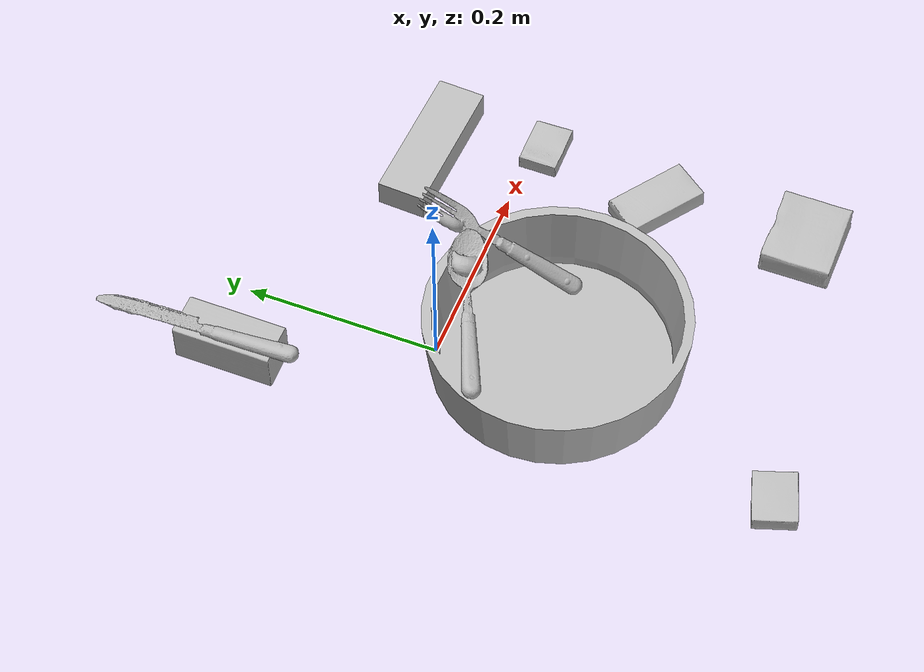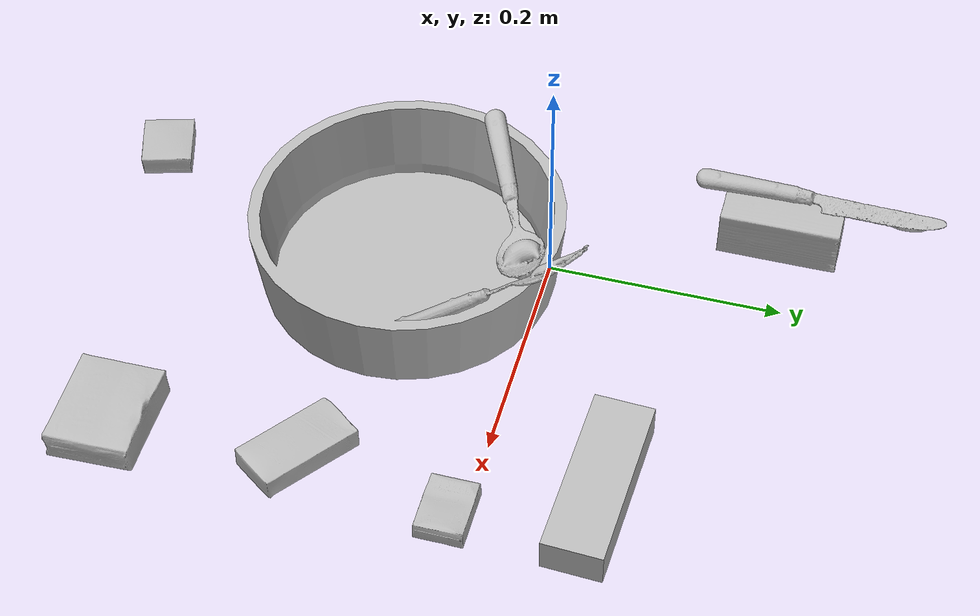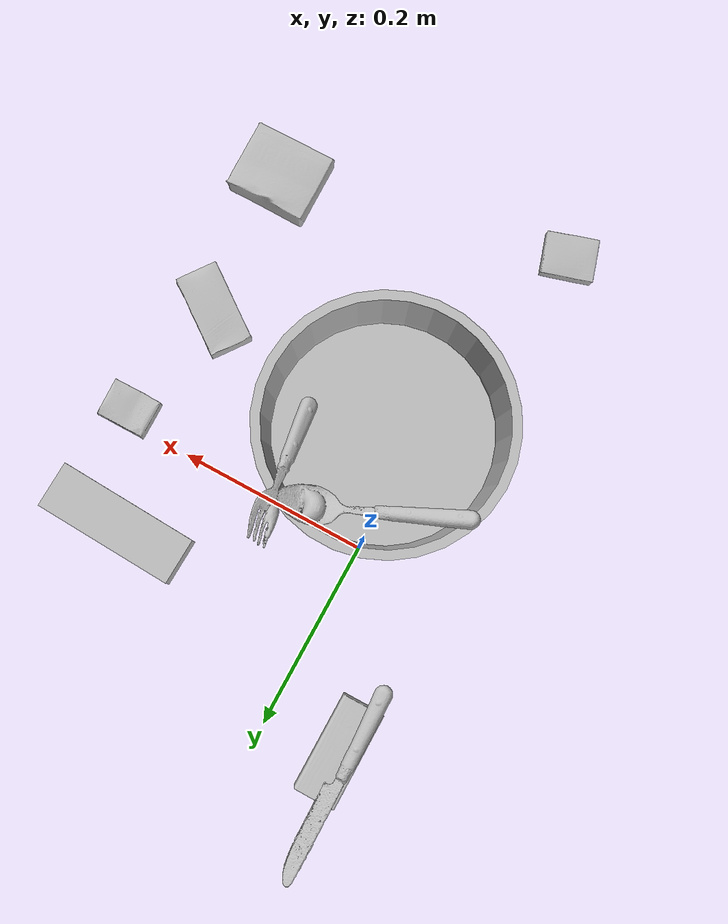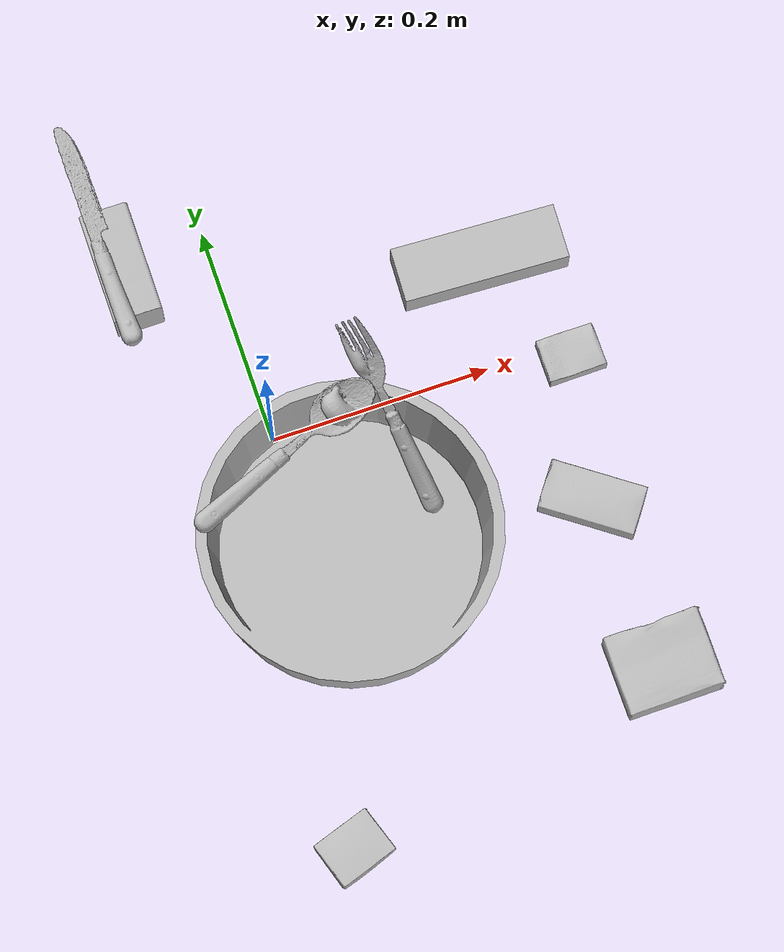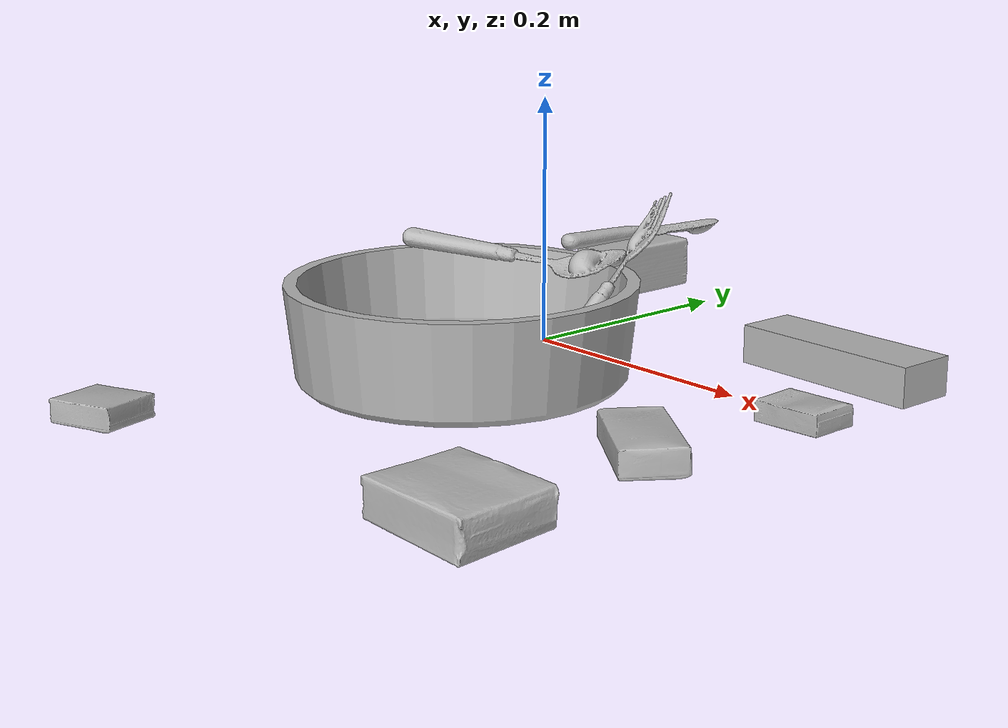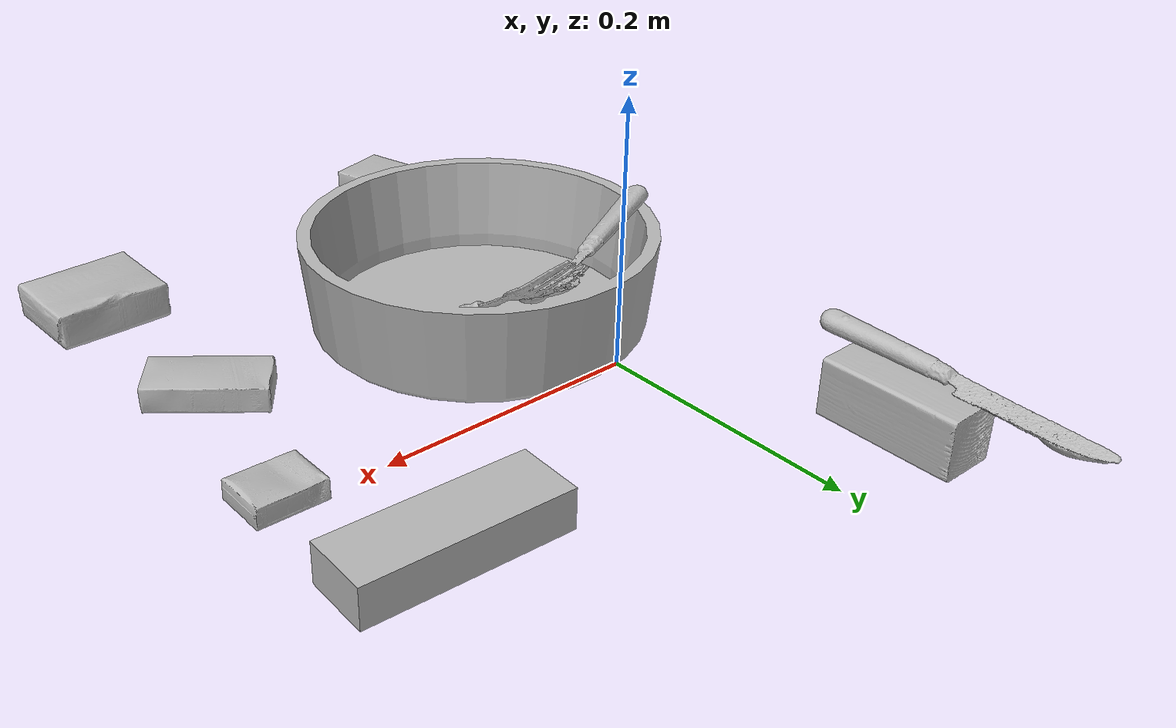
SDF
<sdf version="1.4">
  <world name="default">
    <light name="light1" type="point">
      <pose>0 0 1 0 0 0</pose>
      <diffuse>3 3 3 1</diffuse>
      <specular>3 3 3 1</specular>
    </light>
    <light name="light2" type="point">
      <pose>0 0.5 2 0 0 0</pose>
      <diffuse>1 1 1 1</diffuse>
      <specular>1 1 1 1</specular>
    </light>
    <light name="light3" type="point">
      <pose>0 0.5 2 0 0 0</pose>
      <diffuse>3 3 3 1</diffuse>
      <specular>3 3 3 1</specular>
    </light>
    <scene>
      <ambient>0.7 0.7 0.7</ambient>
    </scene>
    <model name="box11">
      <link name="link_box11">
        <collision name="default">
          <geometry>
            <mesh>
              <uri>model://jenga/collision_meshes/collision.obj</uri>
              <scale>1.0 1.0 1.0</scale>
            </mesh>
          </geometry>
          <surface>
            <friction>
              <ode>
                <mu>0.5</mu>
                <mu2>0.5</mu2>
              </ode>
            </friction>
          <contact>
        <ode>
            <max_vel>0</max_vel>
            <min_depth>0.0001</min_depth>
            <kp>1e8</kp>
        </ode>
    </contact></surface>
        </collision>
        <visual name="default">
          <geometry>
            <mesh>
              <uri>model://jenga/visual_meshes/visual.dae</uri>
              <scale>1.0 1.0 1.0</scale>
            </mesh>
          </geometry>
        </visual>
        <inertial>
          <mass>0.3186844289302826</mass>
          <pose>-2.502855807051674e-07 -0.0001025000965455547 -4.0923401684267446e-05 0.0 -7.34215461761844e-07 0.0</pose>
          <inertia>
            <ixx>8.818771e-05</ixx>
            <iyy>0.0005975576</iyy>
            <izz>0.00063794345</izz>
            <ixy>0</ixy>
            <ixz>0</ixz>
            <iyz>0</iyz>
          </inertia>
        </inertial>
      </link>
      <pose>0.22500395774841309 0.09546239674091339 0.014999995008111 8.03974830589234e-09 6.078355991210499e-10 -0.046219849066500555</pose>
    </model>
    <model name="box12">
      <link name="link_box12">
        <collision name="default">
          <geometry>
            <mesh>
              <uri>model://pudding_box/collision_meshes/collision.obj</uri>
              <scale>0.5 0.5 0.5</scale>
            </mesh>
          </geometry>
          <surface>
            <friction>
              <ode>
                <mu>0.5</mu>
                <mu2>0.5</mu2>
              </ode>
            </friction>
          <contact>
        <ode>
            <max_vel>0</max_vel>
            <min_depth>0.0001</min_depth>
            <kp>1e8</kp>
        </ode>
    </contact></surface>
        </collision>
        <visual name="default">
          <geometry>
            <mesh>
              <uri>model://pudding_box/visual_meshes/visual.dae</uri>
              <scale>0.5 0.5 0.5</scale>
            </mesh>
          </geometry>
        </visual>
        <inertial>
          <mass>0.030172348022460938</mass>
          <pose>0.00024474109522998333 0.000403394311433658 -0.00025944141088984907 0.005213102256408686 -0.006603800110353006 0.02007982142872578</pose>
          <inertia>
            <ixx>8.527073e-06</ixx>
            <iyy>5.7370744e-06</iyy>
            <izz>1.259245e-05</izz>
            <ixy>0</ixy>
            <ixz>0</ixz>
            <iyz>0</iyz>
          </inertia>
        </inertial>
      </link>
      <pose>-0.047819457948207855 -0.3662911653518677 0.009862903505563736 0.022348481417849626 -0.011391677333161009 -1.257829006458796</pose>
    </model>
    <model name="box13">
      <link name="link_box13">
        <collision name="default">
          <geometry>
            <mesh>
              <uri>model://sugar_box/collision_meshes/collision.obj</uri>
              <scale>0.5 0.5 0.5</scale>
            </mesh>
          </geometry>
          <surface>
            <friction>
              <ode>
                <mu>0.5</mu>
                <mu2>0.5</mu2>
              </ode>
            </friction>
          <contact>
        <ode>
            <max_vel>0</max_vel>
            <min_depth>0.0001</min_depth>
            <kp>1e8</kp>
        </ode>
    </contact></surface>
        </collision>
        <visual name="default">
          <geometry>
            <mesh>
              <uri>model://sugar_box/visual_meshes/visual.dae</uri>
              <scale>0.5 0.5 0.5</scale>
            </mesh>
          </geometry>
        </visual>
        <inertial>
          <mass>0.12330043315887451</mass>
          <pose>0.0005171863595023751 1.924554817378521e-05 -0.0001818240125430748 -0.0004046263878582698 0.0010506634058618082 0.0026153787888998363</pose>
          <inertia>
            <ixx>2.5683388e-05</ixx>
            <iyy>8.301401e-05</iyy>
            <izz>9.937768e-05</izz>
            <ixy>0</ixy>
            <ixz>0</ixz>
            <iyz>0</iyz>
          </inertia>
        </inertial>
      </link>
      <pose>0.24644313752651215 -0.14295075833797455 0.011399302631616592 0.0007755038395740908 -0.023433283642337963 -0.636188272965838</pose>
    </model>
    <model name="box21">
      <link name="link_box21">
        <collision name="default">
          <geometry>
            <mesh>
              <uri>model://wood_block/collision_meshes/collision.obj</uri>
              <scale>0.5 0.5 0.5</scale>
            </mesh>
          </geometry>
          <surface>
            <friction>
              <ode>
                <mu>0.5</mu>
                <mu2>0.5</mu2>
              </ode>
            </friction>
          <contact>
        <ode>
            <max_vel>0</max_vel>
            <min_depth>0.0001</min_depth>
            <kp>1e8</kp>
        </ode>
    </contact></surface>
        </collision>
        <visual name="default">
          <geometry>
            <mesh>
              <uri>model://wood_block/visual_meshes/visual.dae</uri>
              <scale>0.5 0.5 0.5</scale>
            </mesh>
          </geometry>
        </visual>
        <inertial>
          <mass>0.22575385868549347</mass>
          <pose>-2.9066577553749084e-06 -0.00028540470520965755 0.00013204291462898254 -0.05220771918194674 -0.005192696213783058 -0.006861377697513623</pose>
          <inertia>
            <ixx>7.552322e-05</ixx>
            <iyy>0.00023857782</iyy>
            <izz>0.00023768542</izz>
            <ixy>0</ixy>
            <ixz>0</ixz>
            <iyz>0</iyz>
          </inertia>
        </inertial>
      </link>
      <pose>-0.07778976112604141 0.18524283170700073 0.02262926660478115 -0.0052088304935622096 0.005718718956591814 1.5739760617282237</pose>
    </model>
    <model name="box22">
      <link name="link_box22">
        <collision name="default">
          <geometry>
            <mesh>
              <uri>model://cracker_box/collision_meshes/collision.obj</uri>
              <scale>0.25 0.25 0.25</scale>
            </mesh>
          </geometry>
          <surface>
            <friction>
              <ode>
                <mu>0.5</mu>
                <mu2>0.5</mu2>
              </ode>
            </friction>
          <contact>
        <ode>
            <max_vel>0</max_vel>
            <min_depth>0.0001</min_depth>
            <kp>1e8</kp>
        </ode>
    </contact></surface>
        </collision>
        <visual name="default">
          <geometry>
            <mesh>
              <uri>model://cracker_box/visual_meshes/visual.dae</uri>
              <scale>0.25 0.25 0.25</scale>
            </mesh>
          </geometry>
        </visual>
        <inertial>
          <mass>0.02141544781625271</mass>
          <pose>0.0002366038243053481 6.358561950037256e-05 -0.00042573839891701937 -0.000316207804917531 -0.011106489600095467 0.0025467954686493135</pose>
          <inertia>
            <ixx>3.4044588e-06</ixx>
            <iyy>5.62143e-06</iyy>
            <izz>8.022297e-06</izz>
            <ixy>0</ixy>
            <ixz>0</ixz>
            <iyz>0</iyz>
          </inertia>
        </inertial>
      </link>
      <pose>0.2730863094329834 -0.012832538224756718 0.009120450355112553 -0.011787974834897174 -0.0073671559423245875 0.0001412685028237205</pose>
    </model>
    <model name="box23">
      <link name="link_box23">
        <collision name="default">
          <geometry>
            <mesh>
              <uri>model://gelatin_box/collision_meshes/collision.obj</uri>
              <scale>1.0 1.0 1.0</scale>
            </mesh>
          </geometry>
          <surface>
            <friction>
              <ode>
                <mu>0.5</mu>
                <mu2>0.5</mu2>
              </ode>
            </friction>
          <contact>
        <ode>
            <max_vel>0</max_vel>
            <min_depth>0.0001</min_depth>
            <kp>1e8</kp>
        </ode>
    </contact></surface>
        </collision>
        <visual name="default">
          <geometry>
            <mesh>
              <uri>model://gelatin_box/visual_meshes/visual.dae</uri>
              <scale>1.0 1.0 1.0</scale>
            </mesh>
          </geometry>
        </visual>
        <inertial>
          <mass>0.2518538236618042</mass>
          <pose>0.00043196187471039593 0.00011156871914863586 -0.0003640321083366871 -0.001050372077086074 -0.00475581729336075 0.01644055760821351</pose>
          <inertia>
            <ixx>0.00017778824</ixx>
            <iyy>0.00012699323</iyy>
            <izz>0.00027063338</izz>
            <ixy>0</ixy>
            <ixz>0</ixz>
            <iyz>0</iyz>
          </inertia>
        </inertial>
      </link>
      <pose>0.2553020715713501 -0.30050745606422424 0.015168317593634129 0.005596658451707661 -0.007303670422905953 1.5708340415703166</pose>
    </model>
    <model name="plate1">
      <link name="link_plate1">
        <collision name="default">
          <geometry>
            <mesh>
              <uri>model://pan_tefal/collision_meshes/collision.obj</uri>
              <scale>1.0 1.0 1.0</scale>
            </mesh>
          </geometry>
          <surface>
            <friction>
              <ode>
                <mu>0.5</mu>
                <mu2>0.5</mu2>
              </ode>
            </friction>
          <contact>
        <ode>
            <max_vel>0</max_vel>
            <min_depth>0.0001</min_depth>
            <kp>1e8</kp>
        </ode>
    </contact></surface>
        </collision>
        <visual name="default">
          <geometry>
            <mesh>
              <uri>model://pan_tefal/visual_meshes/visual.dae</uri>
              <scale>1.0 1.0 1.0</scale>
            </mesh>
          </geometry>
        </visual>
        <inertial>
          <mass>1.2783581018447876</mass>
          <pose>-0.0001800234749680385 3.279297015978955e-05 -0.008514934219419956 0.0008190282028794127 -0.0003301398069692291 -0.33185125702417473</pose>
          <inertia>
            <ixx>0.0088244425</ixx>
            <iyy>0.008881334</iyy>
            <izz>0.016244099</izz>
            <ixy>0</ixy>
            <ixz>0</ixz>
            <iyz>0</iyz>
          </inertia>
        </inertial>
      </link>
      <pose>0.03384391963481903 -0.11453615128993988 0.03804998844861984 2.0032416630662282e-08 -1.974481944872672e-08 -1.0555202574713507</pose>
    </model>
    <model name="silverware1">
      <link name="link_silverware1">
        <collision name="default">
          <geometry>
            <mesh>
              <uri>model://knife/collision_meshes/collision.obj</uri>
              <scale>1.0 1.0 1.0</scale>
            </mesh>
          </geometry>
          <surface>
            <friction>
              <ode>
                <mu>0.5</mu>
                <mu2>0.5</mu2>
              </ode>
            </friction>
          <contact>
        <ode>
            <max_vel>0</max_vel>
            <min_depth>0.0001</min_depth>
            <kp>1e8</kp>
        </ode>
    </contact></surface>
        </collision>
        <visual name="default">
          <geometry>
            <mesh>
              <uri>model://knife/visual_meshes/visual.dae</uri>
              <scale>1.0 1.0 1.0</scale>
            </mesh>
          </geometry>
        </visual>
        <inertial>
          <mass>0.028752580285072327</mass>
          <pose>-0.023785240948200226 0.0015275123296305537 5.0620223191799596e-05 0.07306965696526056 0.017248417457013686 -0.00740982691157592</pose>
          <inertia>
            <ixx>8.161146e-07</ixx>
            <iyy>0.000110462766</iyy>
            <izz>0.00011072555</izz>
            <ixy>0</ixy>
            <ixz>0</ixz>
            <iyz>0</iyz>
          </inertia>
        </inertial>
      </link>
      <pose>-0.0885748565196991 0.213649719953537 0.0490710623562336 0.1361889395441606 0.03317108670541479 1.5792298465956915</pose>
    </model>
    <model name="silverware2">
      <link name="link_silverware2">
        <collision name="default">
          <geometry>
            <mesh>
              <uri>model://spoon/collision_meshes/collision.obj</uri>
              <scale>1.0 1.0 1.0</scale>
            </mesh>
          </geometry>
          <surface>
            <friction>
              <ode>
                <mu>0.5</mu>
                <mu2>0.5</mu2>
              </ode>
            </friction>
          <contact>
        <ode>
            <max_vel>0</max_vel>
            <min_depth>0.0001</min_depth>
            <kp>1e8</kp>
        </ode>
    </contact></surface>
        </collision>
        <visual name="default">
          <geometry>
            <mesh>
              <uri>model://spoon/visual_meshes/visual.dae</uri>
              <scale>1.0 1.0 1.0</scale>
            </mesh>
          </geometry>
        </visual>
        <inertial>
          <mass>0.03275385871529579</mass>
          <pose>-0.005526320543140173 -0.0016034176805987954 -0.0007271653157658875 0.03521620701241808 -0.03906583474323888 0.006150609342160928</pose>
          <inertia>
            <ixx>1.8218228e-06</ixx>
            <iyy>0.00012462735</iyy>
            <izz>0.0001255258</izz>
            <ixy>0</ixy>
            <ixz>0</ixz>
            <iyz>0</iyz>
          </inertia>
        </inertial>
      </link>
      <pose>0.0003933543339371681 -0.03381466120481491 0.0798259973526001 0.2845395270875321 0.07200104145795976 0.40516977322995945</pose>
    </model>
    <model name="silverware3">
      <link name="link_silverware3">
        <collision name="default">
          <geometry>
            <mesh>
              <uri>model://fork/collision_meshes/collision.obj</uri>
              <scale>1.0 1.0 1.0</scale>
            </mesh>
          </geometry>
          <surface>
            <friction>
              <ode>
                <mu>0.5</mu>
                <mu2>0.5</mu2>
              </ode>
            </friction>
          <contact>
        <ode>
            <max_vel>0</max_vel>
            <min_depth>0.0001</min_depth>
            <kp>1e8</kp>
        </ode>
    </contact></surface>
        </collision>
        <visual name="default">
          <geometry>
            <mesh>
              <uri>model://fork/visual_meshes/visual.dae</uri>
              <scale>1.0 1.0 1.0</scale>
            </mesh>
          </geometry>
        </visual>
        <inertial>
          <mass>0.015051598660647869</mass>
          <pose>-0.029570037499070168 0.00046588244731538 0.0003218861238565296 -0.013550825752082697 -0.010977832944741694 0.014453903400543814</pose>
          <inertia>
            <ixx>5.2764364e-07</ixx>
            <iyy>3.9295395e-05</iyy>
            <izz>3.953141e-05</izz>
            <ixy>0</ixy>
            <ixz>0</ixz>
            <iyz>0</iyz>
          </inertia>
        </inertial>
      </link>
      <pose>0.10136153548955917 -0.02890069968998432 0.06653954088687897 -0.46313996803058444 -0.5882563610464553 1.731980189864195</pose>
    </model>
  <physics type="ode">
      <max_contacts>50</max_contacts>
      <ode>
        <solver>
          <type>quick</type>
          <iters>75</iters>
        </solver>
        <constraints>
          <contact_max_correcting_vel>0</contact_max_correcting_vel>
          <contact_surface_layer>0</contact_surface_layer>
        </constraints>
      </ode>
    </physics></world>
</sdf>
